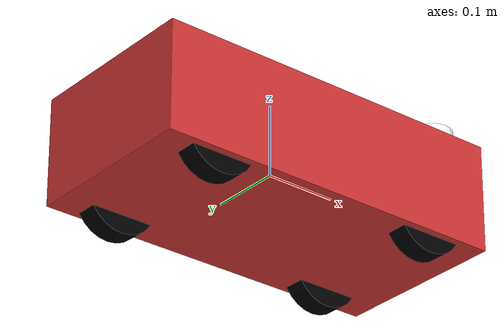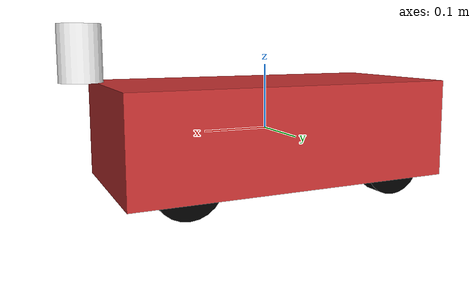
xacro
<?xml version="1.0"?>
<!-- filepath: e:\gazebo大作业\catkin_ws\catkin_ws\src\racecar_description\urdf\test_car.urdf.xacro -->
<robot xmlns:xacro="http://www.ros.org/wiki/xacro" name="test_car">

  <!-- 🚗 车身基座 -->
  <link name="base_link">
    <visual>
      <geometry>
        <box size="0.5 0.25 0.15"/>
      </geometry>
      <material name="red">
        <color rgba="0.8 0.2 0.2 1"/>
      </material>
    </visual>
    <collision>
      <geometry>
        <box size="0.5 0.25 0.15"/>
      </geometry>
    </collision>
    <inertial>
      <mass value="15.0"/>
      <origin xyz="0 0 0"/>
      <inertia ixx="0.5" iyy="0.5" izz="0.5" ixy="0" ixz="0" iyz="0"/>
    </inertial>
  </link>

  <!-- 🎯 前方指示器（显示车头方向） -->
  <link name="front_indicator">
    <visual>
      <geometry>
        <cylinder radius="0.03" length="0.08"/>
      </geometry>
      <material name="white">
        <color rgba="1 1 1 1"/>
      </material>
    </visual>
  </link>

  <joint name="front_indicator_joint" type="fixed">
    <parent link="base_link"/>
    <child link="front_indicator"/>
    <origin xyz="0.28 0 0.12" rpy="0 0 0"/>
  </joint>

  <!-- 🛞 轮子宏定义 -->
  <xacro:macro name="wheel" params="name x y">
    <link name="${name}_wheel_link">
      <visual>
        <geometry>
          <cylinder radius="0.05" length="0.03"/>
        </geometry>
        <material name="black">
          <color rgba="0 0 0 1"/>
        </material>
      </visual>
      <collision>
        <geometry>
          <cylinder radius="0.05" length="0.03"/>
        </geometry>
      </collision>
      <inertial>
        <mass value="1.0"/>
        <inertia ixx="0.01" iyy="0.01" izz="0.01" ixy="0" ixz="0" iyz="0"/>
      </inertial>
    </link>

    <joint name="${name}_wheel_joint" type="continuous">
      <parent link="base_link"/>
      <child link="${name}_wheel_link"/>
      <origin xyz="${x} ${y} -0.05" rpy="1.57 0 0"/>
      <axis xyz="0 0 -1"/>
    </joint>
  </xacro:macro>

  <!-- 🛞 生成四个轮子 -->
  <xacro:wheel name="front_left" x="0.165" y="0.1"/>
  <xacro:wheel name="front_right" x="0.165" y="-0.1"/>
  <xacro:wheel name="rear_left" x="-0.165" y="0.1"/>
  <xacro:wheel name="rear_right" x="-0.165" y="-0.1"/>

  <!-- 🎮 Gazebo差速驱动插件（使用后轮作为驱动轮） -->
  <gazebo>
    <plugin name="differential_drive_controller" filename="libgazebo_ros_diff_drive.so">
      <!-- 🎯 基本配置 -->
      <robotNamespace>/</robotNamespace>
      <alwaysOn>true</alwaysOn>
      <updateRate>50</updateRate>

      <!-- 🛞 驱动轮配置（后轮） -->
      <leftJoint>rear_left_wheel_joint</leftJoint>
      <rightJoint>rear_right_wheel_joint</rightJoint>
      <wheelSeparation>0.2</wheelSeparation>        <!-- 轮距20cm -->
      <wheelDiameter>0.1</wheelDiameter>             <!-- 轮径10cm -->
      <torque>20</torque>

      <!-- 📡 ROS话题配置 -->
      <commandTopic>cmd_vel</commandTopic>           <!-- 控制指令输入 -->
      <odometryTopic>odom</odometryTopic>            <!-- 里程计输出 -->

      <!-- 🗺️ TF坐标系配置 -->
      <odometryFrame>odom</odometryFrame>            <!-- 里程计坐标系 -->
      <robotBaseFrame>base_link</robotBaseFrame>     <!-- 机器人基座坐标系 -->
      <publishWheelTF>false</publishWheelTF>         <!-- 不发布轮子TF -->
      <publishOdom>true</publishOdom>                <!-- 发布里程计 -->
      <publishWheelJointState>false</publishWheelJointState>  <!-- 不发布关节状态 -->
      <publishTF>true</publishTF>                    <!-- 发布odom->base_link变换 -->

      <!-- ⚙️ 物理参数 -->
      <wheelAcceleration>2.0</wheelAcceleration>
      <wheelTorque>20</wheelTorque>
      <odometrySource>world</odometrySource>         <!-- 里程计数据来源 -->
      <publishOdomTF>true</publishOdomTF>            <!-- 发布里程计TF变换 -->

    </plugin>
  </gazebo>

  <!-- 🎨 Gazebo材质（移除摩擦力定义） -->
  <gazebo reference="base_link">
    <material>Gazebo/Red</material>
    <!-- 移除 mu1 和 mu2，使用默认值 -->
  </gazebo>

  <gazebo reference="front_left_wheel_link">
    <material>Gazebo/DarkGrey</material>
    <!-- 移除摩擦力定义 -->
  </gazebo>

  <gazebo reference="front_right_wheel_link">
    <material>Gazebo/DarkGrey</material>
    <!-- 移除摩擦力定义 -->
  </gazebo>

  <gazebo reference="rear_left_wheel_link">
    <material>Gazebo/DarkGrey</material>
    <!-- 移除摩擦力定义 -->
  </gazebo>

  <gazebo reference="rear_right_wheel_link">
    <material>Gazebo/DarkGrey</material>
    <!-- 移除摩擦力定义 -->
  </gazebo>

  <gazebo reference="front_indicator">
    <material>Gazebo/White</material>
  </gazebo>

</robot>
